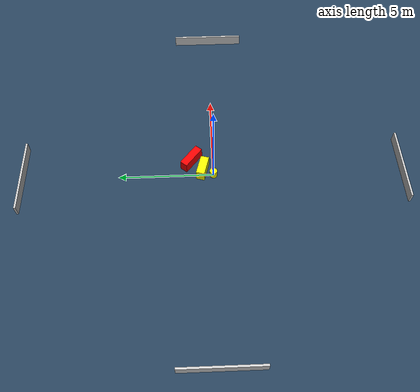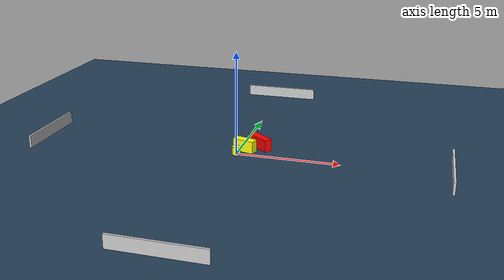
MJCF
<?xml version="1.0" ?>
<mujoco model="generated_environment">
  <option timestep="0.01" integrator="RK4" cone="elliptic"/>
  <default>
    <geom density="1"/>
  </default>
  <asset>
    <texture builtin="gradient" height="3072" name="skybox" rgb1="0.3 0.5 0.7" rgb2="0 0 0" type="skybox" width="512"/>
    <texture builtin="checker" height="300" name="groundplane" rgb1="0.2 0.3 0.4" rgb2="0.1 0.2 0.3" type="2d" width="300"/>
    <material name="groundplane" reflectance="0.2" texrepeat="5 5" texture="groundplane"/>
  </asset>
  <worldbody>
    <light dir="0 0 -1" directional="true" pos="0 0 1.5"/>
    <geom condim="3" friction="0.5 0.005 0.001" material="groundplane" name="floor" pos="0 0 0" size="0 0 0.05" type="plane"/>
    <body name="walls">
      <geom name="wall_1" condim="4" pos="-10.0 0.0 0.3" rgba="0.800000011920929 0.800000011920929 0.800000011920929 1.0" size="0.05 2.0 0.3" type="box"/>
      <geom name="wall_2" condim="4" pos="10.0 0.0 0.3" rgba="0.800000011920929 0.800000011920929 0.800000011920929 1.0" size="0.05 2.0 0.3" type="box"/>
      <geom name="wall_3" condim="4" pos="0.0 -10.0 0.3" rgba="0.800000011920929 0.800000011920929 0.800000011920929 1.0" size="2.0 0.05 0.3" type="box"/>
      <geom name="wall_4" condim="4" pos="0.0 10.0 0.3" rgba="0.800000011920929 0.800000011920929 0.800000011920929 1.0" size="2.0 0.05 0.3" type="box"/>
    </body>
    <body name="robot">
      <joint name="joint_x" type="slide" pos="0 0 0" axis="1 0 0"/>
      <joint name="joint_y" type="slide" pos="0 0 0" axis="0 1 0"/>
      <geom name="robot" type="cylinder" pos="0.0 0.0 0.2" size="0.2 0.2 0.0" mass="5.0" friction="1.0 0.005 0.0001" condim="4" rgba="1.0 1.0 0.0 1.0"/>
    </body>
    <body name="obstacle_1_movable">
      <geom name="obstacle_1_movable" condim="4" pos="0.2717829695865821 0.561587940973315 0.3" euler="0 0 344.9685564241568" friction="0.0 0.005 0.001" rgba="1.0 1.0 0.0 1.0" size="0.5414437894386093 0.22210230864828817 0.3" type="box" mass="0.1"/>
      <joint type="free"/>
    </body>
    <body name="obstacle_2_static">
      <geom name="obstacle_2_static" condim="4" pos="0.8853749007233807 1.1521432803718574 0.3" euler="0 0 141.5645435977318" friction="0.0 0.005 0.001" rgba="1.0 0.0 0.0 1.0" size="0.6618162263652159 0.20815783273535904 0.3" type="box"/>
    </body>
  </worldbody>
  <actuator>
    <motor name="actuator_x" joint="joint_x" gear="1" ctrlrange="-1 1"/>
    <motor name="actuator_y" joint="joint_y" gear="1" ctrlrange="-1 1"/>
  </actuator>
</mujoco>
